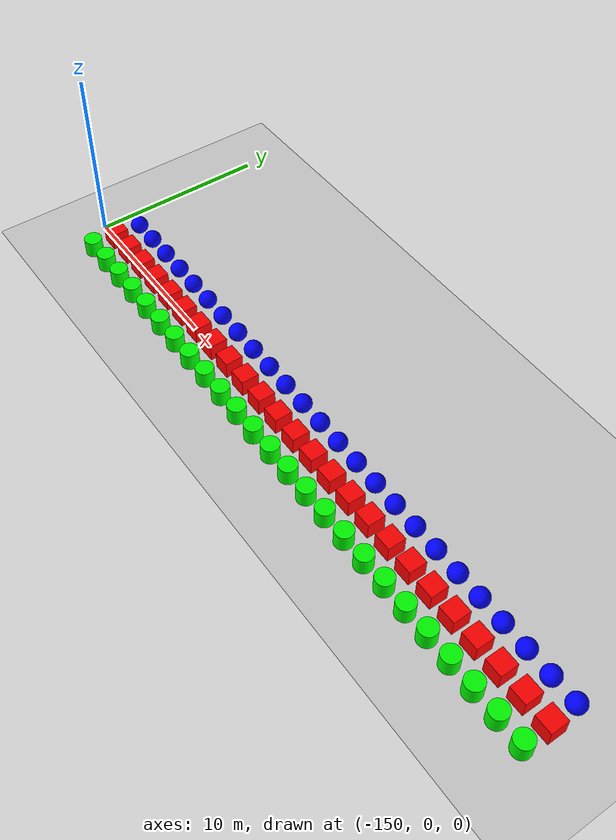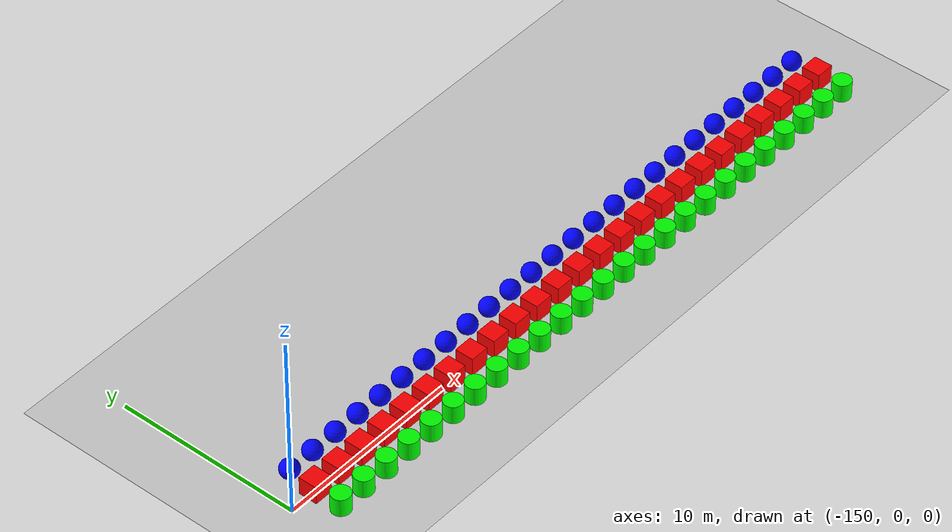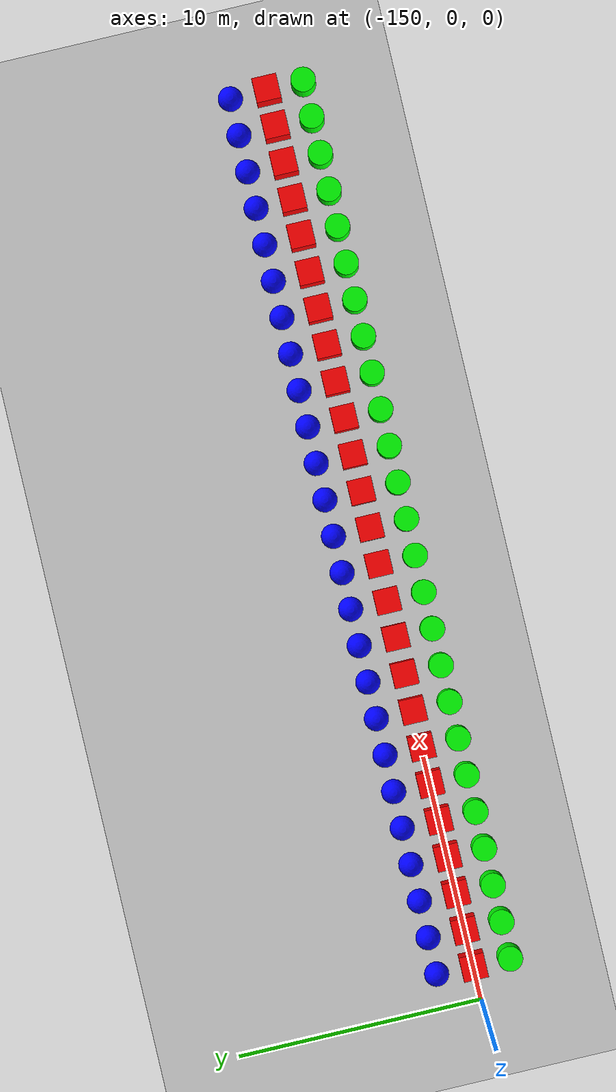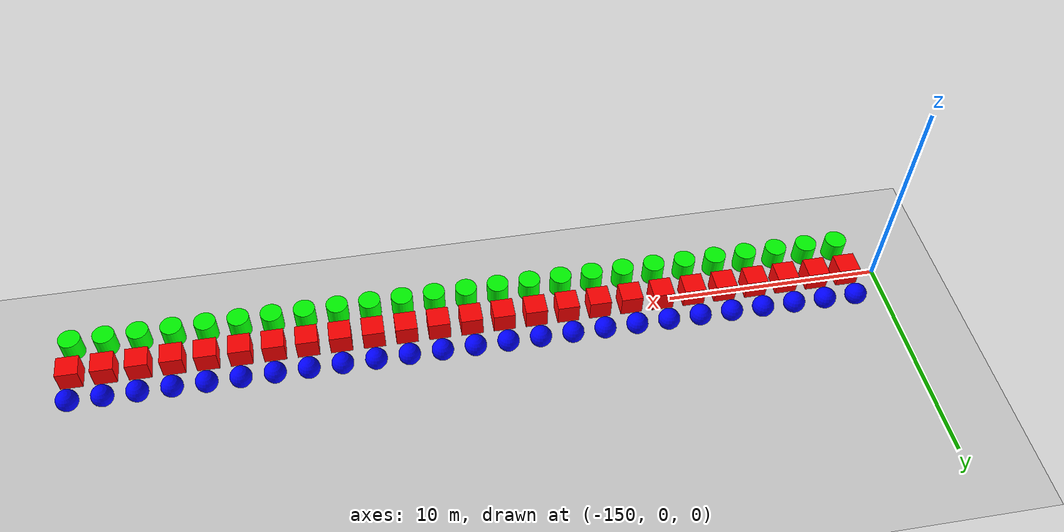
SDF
<sdf version="1.6">
 <world name="shapes">
  <model name="ground_plane">
   <static>true</static>
   <link name="link">
    <collision name="collision">
     <geometry><plane><normal>0 0 1</normal><size>100 100</size></plane></geometry>
    </collision>
    <visual name="visual">
     <geometry><plane><normal>0 0 1</normal><size>100 100</size></plane></geometry>
     <material>
      <ambient>0.8 0.8 0.8 1</ambient>
      <diffuse>0.8 0.8 0.8 1</diffuse>
      <specular>0.8 0.8 0.8 1</specular>
     </material>
    </visual>
   </link>
  </model>
  <model name="box_401">
   <static>false</static>
   <pose>-148.5 0 0.5 0 0 0</pose>
   <link name="box_link">
    <inertial>
     <inertia><ixx>1</ixx><ixy>0</ixy><ixz>0</ixz><iyy>1</iyy><iyz>0</iyz><izz>1</izz></inertia>
     <mass>1.0</mass>
    </inertial>
    <collision name="box_collision"><geometry><box><size>1 1 1</size></box></geometry></collision>
    <visual name="box_visual">
     <geometry><box><size>1 1 1</size></box></geometry>
     <material><ambient>1 0 0 1</ambient><diffuse>1 0 0 1</diffuse><specular>1 0 0 1</specular></material>
    </visual>
   </link>
  </model>
  <model name="cylinder_401">
   <static>false</static>
   <pose>-148.5 -1.5 0.5 0 0 0</pose>
   <link name="cylinder_link">
    <inertial>
     <inertia><ixx>2</ixx><ixy>0</ixy><ixz>0</ixz><iyy>2</iyy><iyz>0</iyz><izz>2</izz></inertia>
     <mass>2.0</mass>
    </inertial>
    <collision name="cylinder_collision">
     <geometry><cylinder><radius>0.5</radius><length>1.0</length></cylinder></geometry>
    </collision>
    <visual name="cylinder_visual">
     <geometry><cylinder><radius>0.5</radius><length>1.0</length></cylinder></geometry>
     <material><ambient>0 1 0 1</ambient><diffuse>0 1 0 1</diffuse><specular>0 1 0 1</specular></material>
    </visual>
   </link>
  </model>
  <model name="sphere_401">
   <static>false</static>
   <pose>-148.5 1.5 0.5 0 0 0</pose>
   <link name="sphere_link">
    <inertial>
     <inertia><ixx>3</ixx><ixy>0</ixy><ixz>0</ixz><iyy>3</iyy><iyz>0</iyz><izz>3</izz></inertia>
     <mass>3.0</mass>
    </inertial>
    <collision name="sphere_collision"><geometry><sphere><radius>0.5</radius></sphere></geometry></collision>
    <visual name="sphere_visual">
     <geometry><sphere><radius>0.5</radius></sphere></geometry>
     <material><ambient>0 0 1 1</ambient><diffuse>0 0 1 1</diffuse><specular>0 0 1 1</specular></material>
    </visual>
   </link>
  </model>
  <model name="box_402">
   <static>false</static>
   <pose>-147.0 0 0.5 0 0 0</pose>
   <link name="box_link">
    <inertial>
     <inertia><ixx>1</ixx><ixy>0</ixy><ixz>0</ixz><iyy>1</iyy><iyz>0</iyz><izz>1</izz></inertia>
     <mass>1.0</mass>
    </inertial>
    <collision name="box_collision"><geometry><box><size>1 1 1</size></box></geometry></collision>
    <visual name="box_visual">
     <geometry><box><size>1 1 1</size></box></geometry>
     <material><ambient>1 0 0 1</ambient><diffuse>1 0 0 1</diffuse><specular>1 0 0 1</specular></material>
    </visual>
   </link>
  </model>
  <model name="cylinder_402">
   <static>false</static>
   <pose>-147.0 -1.5 0.5 0 0 0</pose>
   <link name="cylinder_link">
    <inertial>
     <inertia><ixx>2</ixx><ixy>0</ixy><ixz>0</ixz><iyy>2</iyy><iyz>0</iyz><izz>2</izz></inertia>
     <mass>2.0</mass>
    </inertial>
    <collision name="cylinder_collision">
     <geometry><cylinder><radius>0.5</radius><length>1.0</length></cylinder></geometry>
    </collision>
    <visual name="cylinder_visual">
     <geometry><cylinder><radius>0.5</radius><length>1.0</length></cylinder></geometry>
     <material><ambient>0 1 0 1</ambient><diffuse>0 1 0 1</diffuse><specular>0 1 0 1</specular></material>
    </visual>
   </link>
  </model>
  <model name="sphere_402">
   <static>false</static>
   <pose>-147.0 1.5 0.5 0 0 0</pose>
   <link name="sphere_link">
    <inertial>
     <inertia><ixx>3</ixx><ixy>0</ixy><ixz>0</ixz><iyy>3</iyy><iyz>0</iyz><izz>3</izz></inertia>
     <mass>3.0</mass>
    </inertial>
    <collision name="sphere_collision"><geometry><sphere><radius>0.5</radius></sphere></geometry></collision>
    <visual name="sphere_visual">
     <geometry><sphere><radius>0.5</radius></sphere></geometry>
     <material><ambient>0 0 1 1</ambient><diffuse>0 0 1 1</diffuse><specular>0 0 1 1</specular></material>
    </visual>
   </link>
  </model>
  <model name="box_403">
   <static>false</static>
   <pose>-145.5 0 0.5 0 0 0</pose>
   <link name="box_link">
    <inertial>
     <inertia><ixx>1</ixx><ixy>0</ixy><ixz>0</ixz><iyy>1</iyy><iyz>0</iyz><izz>1</izz></inertia>
     <mass>1.0</mass>
    </inertial>
    <collision name="box_collision"><geometry><box><size>1 1 1</size></box></geometry></collision>
    <visual name="box_visual">
     <geometry><box><size>1 1 1</size></box></geometry>
     <material><ambient>1 0 0 1</ambient><diffuse>1 0 0 1</diffuse><specular>1 0 0 1</specular></material>
    </visual>
   </link>
  </model>
  <model name="cylinder_403">
   <static>false</static>
   <pose>-145.5 -1.5 0.5 0 0 0</pose>
   <link name="cylinder_link">
    <inertial>
     <inertia><ixx>2</ixx><ixy>0</ixy><ixz>0</ixz><iyy>2</iyy><iyz>0</iyz><izz>2</izz></inertia>
     <mass>2.0</mass>
    </inertial>
    <collision name="cylinder_collision">
     <geometry><cylinder><radius>0.5</radius><length>1.0</length></cylinder></geometry>
    </collision>
    <visual name="cylinder_visual">
     <geometry><cylinder><radius>0.5</radius><length>1.0</length></cylinder></geometry>
     <material><ambient>0 1 0 1</ambient><diffuse>0 1 0 1</diffuse><specular>0 1 0 1</specular></material>
    </visual>
   </link>
  </model>
  <model name="sphere_403">
   <static>false</static>
   <pose>-145.5 1.5 0.5 0 0 0</pose>
   <link name="sphere_link">
    <inertial>
     <inertia><ixx>3</ixx><ixy>0</ixy><ixz>0</ixz><iyy>3</iyy><iyz>0</iyz><izz>3</izz></inertia>
     <mass>3.0</mass>
    </inertial>
    <collision name="sphere_collision"><geometry><sphere><radius>0.5</radius></sphere></geometry></collision>
    <visual name="sphere_visual">
     <geometry><sphere><radius>0.5</radius></sphere></geometry>
     <material><ambient>0 0 1 1</ambient><diffuse>0 0 1 1</diffuse><specular>0 0 1 1</specular></material>
    </visual>
   </link>
  </model>
  <model name="box_404">
   <static>false</static>
   <pose>-144.0 0 0.5 0 0 0</pose>
   <link name="box_link">
    <inertial>
     <inertia><ixx>1</ixx><ixy>0</ixy><ixz>0</ixz><iyy>1</iyy><iyz>0</iyz><izz>1</izz></inertia>
     <mass>1.0</mass>
    </inertial>
    <collision name="box_collision"><geometry><box><size>1 1 1</size></box></geometry></collision>
    <visual name="box_visual">
     <geometry><box><size>1 1 1</size></box></geometry>
     <material><ambient>1 0 0 1</ambient><diffuse>1 0 0 1</diffuse><specular>1 0 0 1</specular></material>
    </visual>
   </link>
  </model>
  <model name="cylinder_404">
   <static>false</static>
   <pose>-144.0 -1.5 0.5 0 0 0</pose>
   <link name="cylinder_link">
    <inertial>
     <inertia><ixx>2</ixx><ixy>0</ixy><ixz>0</ixz><iyy>2</iyy><iyz>0</iyz><izz>2</izz></inertia>
     <mass>2.0</mass>
    </inertial>
    <collision name="cylinder_collision">
     <geometry><cylinder><radius>0.5</radius><length>1.0</length></cylinder></geometry>
    </collision>
    <visual name="cylinder_visual">
     <geometry><cylinder><radius>0.5</radius><length>1.0</length></cylinder></geometry>
     <material><ambient>0 1 0 1</ambient><diffuse>0 1 0 1</diffuse><specular>0 1 0 1</specular></material>
    </visual>
   </link>
  </model>
  <model name="sphere_404">
   <static>false</static>
   <pose>-144.0 1.5 0.5 0 0 0</pose>
   <link name="sphere_link">
    <inertial>
     <inertia><ixx>3</ixx><ixy>0</ixy><ixz>0</ixz><iyy>3</iyy><iyz>0</iyz><izz>3</izz></inertia>
     <mass>3.0</mass>
    </inertial>
    <collision name="sphere_collision"><geometry><sphere><radius>0.5</radius></sphere></geometry></collision>
    <visual name="sphere_visual">
     <geometry><sphere><radius>0.5</radius></sphere></geometry>
     <material><ambient>0 0 1 1</ambient><diffuse>0 0 1 1</diffuse><specular>0 0 1 1</specular></material>
    </visual>
   </link>
  </model>
  <model name="box_405">
   <static>false</static>
   <pose>-142.5 0 0.5 0 0 0</pose>
   <link name="box_link">
    <inertial>
     <inertia><ixx>1</ixx><ixy>0</ixy><ixz>0</ixz><iyy>1</iyy><iyz>0</iyz><izz>1</izz></inertia>
     <mass>1.0</mass>
    </inertial>
    <collision name="box_collision"><geometry><box><size>1 1 1</size></box></geometry></collision>
    <visual name="box_visual">
     <geometry><box><size>1 1 1</size></box></geometry>
     <material><ambient>1 0 0 1</ambient><diffuse>1 0 0 1</diffuse><specular>1 0 0 1</specular></material>
    </visual>
   </link>
  </model>
  <model name="cylinder_405">
   <static>false</static>
   <pose>-142.5 -1.5 0.5 0 0 0</pose>
   <link name="cylinder_link">
    <inertial>
     <inertia><ixx>2</ixx><ixy>0</ixy><ixz>0</ixz><iyy>2</iyy><iyz>0</iyz><izz>2</izz></inertia>
     <mass>2.0</mass>
    </inertial>
    <collision name="cylinder_collision">
     <geometry><cylinder><radius>0.5</radius><length>1.0</length></cylinder></geometry>
    </collision>
    <visual name="cylinder_visual">
     <geometry><cylinder><radius>0.5</radius><length>1.0</length></cylinder></geometry>
     <material><ambient>0 1 0 1</ambient><diffuse>0 1 0 1</diffuse><specular>0 1 0 1</specular></material>
    </visual>
   </link>
  </model>
  <model name="sphere_405">
   <static>false</static>
   <pose>-142.5 1.5 0.5 0 0 0</pose>
   <link name="sphere_link">
    <inertial>
     <inertia><ixx>3</ixx><ixy>0</ixy><ixz>0</ixz><iyy>3</iyy><iyz>0</iyz><izz>3</izz></inertia>
     <mass>3.0</mass>
    </inertial>
    <collision name="sphere_collision"><geometry><sphere><radius>0.5</radius></sphere></geometry></collision>
    <visual name="sphere_visual">
     <geometry><sphere><radius>0.5</radius></sphere></geometry>
     <material><ambient>0 0 1 1</ambient><diffuse>0 0 1 1</diffuse><specular>0 0 1 1</specular></material>
    </visual>
   </link>
  </model>
  <model name="box_406">
   <static>false</static>
   <pose>-141.0 0 0.5 0 0 0</pose>
   <link name="box_link">
    <inertial>
     <inertia><ixx>1</ixx><ixy>0</ixy><ixz>0</ixz><iyy>1</iyy><iyz>0</iyz><izz>1</izz></inertia>
     <mass>1.0</mass>
    </inertial>
    <collision name="box_collision"><geometry><box><size>1 1 1</size></box></geometry></collision>
    <visual name="box_visual">
     <geometry><box><size>1 1 1</size></box></geometry>
     <material><ambient>1 0 0 1</ambient><diffuse>1 0 0 1</diffuse><specular>1 0 0 1</specular></material>
    </visual>
   </link>
  </model>
  <model name="cylinder_406">
   <static>false</static>
   <pose>-141.0 -1.5 0.5 0 0 0</pose>
   <link name="cylinder_link">
    <inertial>
     <inertia><ixx>2</ixx><ixy>0</ixy><ixz>0</ixz><iyy>2</iyy><iyz>0</iyz><izz>2</izz></inertia>
     <mass>2.0</mass>
    </inertial>
    <collision name="cylinder_collision">
     <geometry><cylinder><radius>0.5</radius><length>1.0</length></cylinder></geometry>
    </collision>
    <visual name="cylinder_visual">
     <geometry><cylinder><radius>0.5</radius><length>1.0</length></cylinder></geometry>
     <material><ambient>0 1 0 1</ambient><diffuse>0 1 0 1</diffuse><specular>0 1 0 1</specular></material>
    </visual>
   </link>
  </model>
  <model name="sphere_406">
   <static>false</static>
   <pose>-141.0 1.5 0.5 0 0 0</pose>
   <link name="sphere_link">
    <inertial>
     <inertia><ixx>3</ixx><ixy>0</ixy><ixz>0</ixz><iyy>3</iyy><iyz>0</iyz><izz>3</izz></inertia>
     <mass>3.0</mass>
    </inertial>
    <collision name="sphere_collision"><geometry><sphere><radius>0.5</radius></sphere></geometry></collision>
    <visual name="sphere_visual">
     <geometry><sphere><radius>0.5</radius></sphere></geometry>
     <material><ambient>0 0 1 1</ambient><diffuse>0 0 1 1</diffuse><specular>0 0 1 1</specular></material>
    </visual>
   </link>
  </model>
  <model name="box_407">
   <static>false</static>
   <pose>-139.5 0 0.5 0 0 0</pose>
   <link name="box_link">
    <inertial>
     <inertia><ixx>1</ixx><ixy>0</ixy><ixz>0</ixz><iyy>1</iyy><iyz>0</iyz><izz>1</izz></inertia>
     <mass>1.0</mass>
    </inertial>
    <collision name="box_collision"><geometry><box><size>1 1 1</size></box></geometry></collision>
    <visual name="box_visual">
     <geometry><box><size>1 1 1</size></box></geometry>
     <material><ambient>1 0 0 1</ambient><diffuse>1 0 0 1</diffuse><specular>1 0 0 1</specular></material>
    </visual>
   </link>
  </model>
  <model name="cylinder_407">
   <static>false</static>
   <pose>-139.5 -1.5 0.5 0 0 0</pose>
   <link name="cylinder_link">
    <inertial>
     <inertia><ixx>2</ixx><ixy>0</ixy><ixz>0</ixz><iyy>2</iyy><iyz>0</iyz><izz>2</izz></inertia>
     <mass>2.0</mass>
    </inertial>
    <collision name="cylinder_collision">
     <geometry><cylinder><radius>0.5</radius><length>1.0</length></cylinder></geometry>
    </collision>
    <visual name="cylinder_visual">
     <geometry><cylinder><radius>0.5</radius><length>1.0</length></cylinder></geometry>
     <material><ambient>0 1 0 1</ambient><diffuse>0 1 0 1</diffuse><specular>0 1 0 1</specular></material>
    </visual>
   </link>
  </model>
  <model name="sphere_407">
   <static>false</static>
   <pose>-139.5 1.5 0.5 0 0 0</pose>
   <link name="sphere_link">
    <inertial>
     <inertia><ixx>3</ixx><ixy>0</ixy><ixz>0</ixz><iyy>3</iyy><iyz>0</iyz><izz>3</izz></inertia>
     <mass>3.0</mass>
    </inertial>
    <collision name="sphere_collision"><geometry><sphere><radius>0.5</radius></sphere></geometry></collision>
    <visual name="sphere_visual">
     <geometry><sphere><radius>0.5</radius></sphere></geometry>
     <material><ambient>0 0 1 1</ambient><diffuse>0 0 1 1</diffuse><specular>0 0 1 1</specular></material>
    </visual>
   </link>
  </model>
  <model name="box_408">
   <static>false</static>
   <pose>-138.0 0 0.5 0 0 0</pose>
   <link name="box_link">
    <inertial>
     <inertia><ixx>1</ixx><ixy>0</ixy><ixz>0</ixz><iyy>1</iyy><iyz>0</iyz><izz>1</izz></inertia>
     <mass>1.0</mass>
    </inertial>
    <collision name="box_collision"><geometry><box><size>1 1 1</size></box></geometry></collision>
    <visual name="box_visual">
     <geometry><box><size>1 1 1</size></box></geometry>
     <material><ambient>1 0 0 1</ambient><diffuse>1 0 0 1</diffuse><specular>1 0 0 1</specular></material>
    </visual>
   </link>
  </model>
  <model name="cylinder_408">
   <static>false</static>
   <pose>-138.0 -1.5 0.5 0 0 0</pose>
   <link name="cylinder_link">
    <inertial>
     <inertia><ixx>2</ixx><ixy>0</ixy><ixz>0</ixz><iyy>2</iyy><iyz>0</iyz><izz>2</izz></inertia>
     <mass>2.0</mass>
    </inertial>
    <collision name="cylinder_collision">
     <geometry><cylinder><radius>0.5</radius><length>1.0</length></cylinder></geometry>
    </collision>
    <visual name="cylinder_visual">
     <geometry><cylinder><radius>0.5</radius><length>1.0</length></cylinder></geometry>
     <material><ambient>0 1 0 1</ambient><diffuse>0 1 0 1</diffuse><specular>0 1 0 1</specular></material>
    </visual>
   </link>
  </model>
  <model name="sphere_408">
   <static>false</static>
   <pose>-138.0 1.5 0.5 0 0 0</pose>
   <link name="sphere_link">
    <inertial>
     <inertia><ixx>3</ixx><ixy>0</ixy><ixz>0</ixz><iyy>3</iyy><iyz>0</iyz><izz>3</izz></inertia>
     <mass>3.0</mass>
    </inertial>
    <collision name="sphere_collision"><geometry><sphere><radius>0.5</radius></sphere></geometry></collision>
    <visual name="sphere_visual">
     <geometry><sphere><radius>0.5</radius></sphere></geometry>
     <material><ambient>0 0 1 1</ambient><diffuse>0 0 1 1</diffuse><specular>0 0 1 1</specular></material>
    </visual>
   </link>
  </model>
  <model name="box_409">
   <static>false</static>
   <pose>-136.5 0 0.5 0 0 0</pose>
   <link name="box_link">
    <inertial>
     <inertia><ixx>1</ixx><ixy>0</ixy><ixz>0</ixz><iyy>1</iyy><iyz>0</iyz><izz>1</izz></inertia>
     <mass>1.0</mass>
    </inertial>
    <collision name="box_collision"><geometry><box><size>1 1 1</size></box></geometry></collision>
    <visual name="box_visual">
     <geometry><box><size>1 1 1</size></box></geometry>
     <material><ambient>1 0 0 1</ambient><diffuse>1 0 0 1</diffuse><specular>1 0 0 1</specular></material>
    </visual>
   </link>
  </model>
  <model name="cylinder_409">
   <static>false</static>
   <pose>-136.5 -1.5 0.5 0 0 0</pose>
   <link name="cylinder_link">
    <inertial>
     <inertia><ixx>2</ixx><ixy>0</ixy><ixz>0</ixz><iyy>2</iyy><iyz>0</iyz><izz>2</izz></inertia>
     <mass>2.0</mass>
    </inertial>
    <collision name="cylinder_collision">
     <geometry><cylinder><radius>0.5</radius><length>1.0</length></cylinder></geometry>
    </collision>
    <visual name="cylinder_visual">
     <geometry><cylinder><radius>0.5</radius><length>1.0</length></cylinder></geometry>
     <material><ambient>0 1 0 1</ambient><diffuse>0 1 0 1</diffuse><specular>0 1 0 1</specular></material>
    </visual>
   </link>
  </model>
  <model name="sphere_409">
   <static>false</static>
   <pose>-136.5 1.5 0.5 0 0 0</pose>
   <link name="sphere_link">
    <inertial>
     <inertia><ixx>3</ixx><ixy>0</ixy><ixz>0</ixz><iyy>3</iyy><iyz>0</iyz><izz>3</izz></inertia>
     <mass>3.0</mass>
    </inertial>
    <collision name="sphere_collision"><geometry><sphere><radius>0.5</radius></sphere></geometry></collision>
    <visual name="sphere_visual">
     <geometry><sphere><radius>0.5</radius></sphere></geometry>
     <material><ambient>0 0 1 1</ambient><diffuse>0 0 1 1</diffuse><specular>0 0 1 1</specular></material>
    </visual>
   </link>
  </model>
  <model name="box_410">
   <static>false</static>
   <pose>-135.0 0 0.5 0 0 0</pose>
   <link name="box_link">
    <inertial>
     <inertia><ixx>1</ixx><ixy>0</ixy><ixz>0</ixz><iyy>1</iyy><iyz>0</iyz><izz>1</izz></inertia>
     <mass>1.0</mass>
    </inertial>
    <collision name="box_collision"><geometry><box><size>1 1 1</size></box></geometry></collision>
    <visual name="box_visual">
     <geometry><box><size>1 1 1</size></box></geometry>
     <material><ambient>1 0 0 1</ambient><diffuse>1 0 0 1</diffuse><specular>1 0 0 1</specular></material>
    </visual>
   </link>
  </model>
  <model name="cylinder_410">
   <static>false</static>
   <pose>-135.0 -1.5 0.5 0 0 0</pose>
   <link name="cylinder_link">
    <inertial>
     <inertia><ixx>2</ixx><ixy>0</ixy><ixz>0</ixz><iyy>2</iyy><iyz>0</iyz><izz>2</izz></inertia>
     <mass>2.0</mass>
    </inertial>
    <collision name="cylinder_collision">
     <geometry><cylinder><radius>0.5</radius><length>1.0</length></cylinder></geometry>
    </collision>
    <visual name="cylinder_visual">
     <geometry><cylinder><radius>0.5</radius><length>1.0</length></cylinder></geometry>
     <material><ambient>0 1 0 1</ambient><diffuse>0 1 0 1</diffuse><specular>0 1 0 1</specular></material>
    </visual>
   </link>
  </model>
  <model name="sphere_410">
   <static>false</static>
   <pose>-135.0 1.5 0.5 0 0 0</pose>
   <link name="sphere_link">
    <inertial>
     <inertia><ixx>3</ixx><ixy>0</ixy><ixz>0</ixz><iyy>3</iyy><iyz>0</iyz><izz>3</izz></inertia>
     <mass>3.0</mass>
    </inertial>
    <collision name="sphere_collision"><geometry><sphere><radius>0.5</radius></sphere></geometry></collision>
    <visual name="sphere_visual">
     <geometry><sphere><radius>0.5</radius></sphere></geometry>
     <material><ambient>0 0 1 1</ambient><diffuse>0 0 1 1</diffuse><specular>0 0 1 1</specular></material>
    </visual>
   </link>
  </model>
  <model name="box_411">
   <static>false</static>
   <pose>-133.5 0 0.5 0 0 0</pose>
   <link name="box_link">
    <inertial>
     <inertia><ixx>1</ixx><ixy>0</ixy><ixz>0</ixz><iyy>1</iyy><iyz>0</iyz><izz>1</izz></inertia>
     <mass>1.0</mass>
    </inertial>
    <collision name="box_collision"><geometry><box><size>1 1 1</size></box></geometry></collision>
    <visual name="box_visual">
     <geometry><box><size>1 1 1</size></box></geometry>
     <material><ambient>1 0 0 1</ambient><diffuse>1 0 0 1</diffuse><specular>1 0 0 1</specular></material>
    </visual>
   </link>
  </model>
  <model name="cylinder_411">
   <static>false</static>
   <pose>-133.5 -1.5 0.5 0 0 0</pose>
   <link name="cylinder_link">
    <inertial>
     <inertia><ixx>2</ixx><ixy>0</ixy><ixz>0</ixz><iyy>2</iyy><iyz>0</iyz><izz>2</izz></inertia>
     <mass>2.0</mass>
    </inertial>
    <collision name="cylinder_collision">
     <geometry><cylinder><radius>0.5</radius><length>1.0</length></cylinder></geometry>
    </collision>
    <visual name="cylinder_visual">
     <geometry><cylinder><radius>0.5</radius><length>1.0</length></cylinder></geometry>
     <material><ambient>0 1 0 1</ambient><diffuse>0 1 0 1</diffuse><specular>0 1 0 1</specular></material>
    </visual>
   </link>
  </model>
  <model name="sphere_411">
   <static>false</static>
   <pose>-133.5 1.5 0.5 0 0 0</pose>
   <link name="sphere_link">
    <inertial>
     <inertia><ixx>3</ixx><ixy>0</ixy><ixz>0</ixz><iyy>3</iyy><iyz>0</iyz><izz>3</izz></inertia>
     <mass>3.0</mass>
    </inertial>
    <collision name="sphere_collision"><geometry><sphere><radius>0.5</radius></sphere></geometry></collision>
    <visual name="sphere_visual">
     <geometry><sphere><radius>0.5</radius></sphere></geometry>
     <material><ambient>0 0 1 1</ambient><diffuse>0 0 1 1</diffuse><specular>0 0 1 1</specular></material>
    </visual>
   </link>
  </model>
  <model name="box_412">
   <static>false</static>
   <pose>-132.0 0 0.5 0 0 0</pose>
   <link name="box_link">
    <inertial>
     <inertia><ixx>1</ixx><ixy>0</ixy><ixz>0</ixz><iyy>1</iyy><iyz>0</iyz><izz>1</izz></inertia>
     <mass>1.0</mass>
    </inertial>
    <collision name="box_collision"><geometry><box><size>1 1 1</size></box></geometry></collision>
    <visual name="box_visual">
     <geometry><box><size>1 1 1</size></box></geometry>
     <material><ambient>1 0 0 1</ambient><diffuse>1 0 0 1</diffuse><specular>1 0 0 1</specular></material>
    </visual>
   </link>
  </model>
  <model name="cylinder_412">
   <static>false</static>
   <pose>-132.0 -1.5 0.5 0 0 0</pose>
   <link name="cylinder_link">
    <inertial>
     <inertia><ixx>2</ixx><ixy>0</ixy><ixz>0</ixz><iyy>2</iyy><iyz>0</iyz><izz>2</izz></inertia>
     <mass>2.0</mass>
    </inertial>
    <collision name="cylinder_collision">
     <geometry><cylinder><radius>0.5</radius><length>1.0</length></cylinder></geometry>
    </collision>
    <visual name="cylinder_visual">
     <geometry><cylinder><radius>0.5</radius><length>1.0</length></cylinder></geometry>
     <material><ambient>0 1 0 1</ambient><diffuse>0 1 0 1</diffuse><specular>0 1 0 1</specular></material>
    </visual>
   </link>
  </model>
  <model name="sphere_412">
   <static>false</static>
   <pose>-132.0 1.5 0.5 0 0 0</pose>
   <link name="sphere_link">
    <inertial>
     <inertia><ixx>3</ixx><ixy>0</ixy><ixz>0</ixz><iyy>3</iyy><iyz>0</iyz><izz>3</izz></inertia>
     <mass>3.0</mass>
    </inertial>
    <collision name="sphere_collision"><geometry><sphere><radius>0.5</radius></sphere></geometry></collision>
    <visual name="sphere_visual">
     <geometry><sphere><radius>0.5</radius></sphere></geometry>
     <material><ambient>0 0 1 1</ambient><diffuse>0 0 1 1</diffuse><specular>0 0 1 1</specular></material>
    </visual>
   </link>
  </model>
  <model name="box_413">
   <static>false</static>
   <pose>-130.5 0 0.5 0 0 0</pose>
   <link name="box_link">
    <inertial>
     <inertia><ixx>1</ixx><ixy>0</ixy><ixz>0</ixz><iyy>1</iyy><iyz>0</iyz><izz>1</izz></inertia>
     <mass>1.0</mass>
    </inertial>
    <collision name="box_collision"><geometry><box><size>1 1 1</size></box></geometry></collision>
    <visual name="box_visual">
     <geometry><box><size>1 1 1</size></box></geometry>
     <material><ambient>1 0 0 1</ambient><diffuse>1 0 0 1</diffuse><specular>1 0 0 1</specular></material>
    </visual>
   </link>
  </model>
  <model name="cylinder_413">
   <static>false</static>
   <pose>-130.5 -1.5 0.5 0 0 0</pose>
   <link name="cylinder_link">
    <inertial>
     <inertia><ixx>2</ixx><ixy>0</ixy><ixz>0</ixz><iyy>2</iyy><iyz>0</iyz><izz>2</izz></inertia>
     <mass>2.0</mass>
    </inertial>
    <collision name="cylinder_collision">
     <geometry><cylinder><radius>0.5</radius><length>1.0</length></cylinder></geometry>
    </collision>
    <visual name="cylinder_visual">
     <geometry><cylinder><radius>0.5</radius><length>1.0</length></cylinder></geometry>
     <material><ambient>0 1 0 1</ambient><diffuse>0 1 0 1</diffuse><specular>0 1 0 1</specular></material>
    </visual>
   </link>
  </model>
  <model name="sphere_413">
   <static>false</static>
   <pose>-130.5 1.5 0.5 0 0 0</pose>
   <link name="sphere_link">
    <inertial>
     <inertia><ixx>3</ixx><ixy>0</ixy><ixz>0</ixz><iyy>3</iyy><iyz>0</iyz><izz>3</izz></inertia>
     <mass>3.0</mass>
    </inertial>
    <collision name="sphere_collision"><geometry><sphere><radius>0.5</radius></sphere></geometry></collision>
    <visual name="sphere_visual">
     <geometry><sphere><radius>0.5</radius></sphere></geometry>
     <material><ambient>0 0 1 1</ambient><diffuse>0 0 1 1</diffuse><specular>0 0 1 1</specular></material>
    </visual>
   </link>
  </model>
  <model name="box_414">
   <static>false</static>
   <pose>-129.0 0 0.5 0 0 0</pose>
   <link name="box_link">
    <inertial>
     <inertia><ixx>1</ixx><ixy>0</ixy><ixz>0</ixz><iyy>1</iyy><iyz>0</iyz><izz>1</izz></inertia>
     <mass>1.0</mass>
    </inertial>
    <collision name="box_collision"><geometry><box><size>1 1 1</size></box></geometry></collision>
    <visual name="box_visual">
     <geometry><box><size>1 1 1</size></box></geometry>
     <material><ambient>1 0 0 1</ambient><diffuse>1 0 0 1</diffuse><specular>1 0 0 1</specular></material>
    </visual>
   </link>
  </model>
  <model name="cylinder_414">
   <static>false</static>
   <pose>-129.0 -1.5 0.5 0 0 0</pose>
   <link name="cylinder_link">
    <inertial>
     <inertia><ixx>2</ixx><ixy>0</ixy><ixz>0</ixz><iyy>2</iyy><iyz>0</iyz><izz>2</izz></inertia>
     <mass>2.0</mass>
    </inertial>
    <collision name="cylinder_collision">
     <geometry><cylinder><radius>0.5</radius><length>1.0</length></cylinder></geometry>
    </collision>
    <visual name="cylinder_visual">
     <geometry><cylinder><radius>0.5</radius><length>1.0</length></cylinder></geometry>
     <material><ambient>0 1 0 1</ambient><diffuse>0 1 0 1</diffuse><specular>0 1 0 1</specular></material>
    </visual>
   </link>
  </model>
  <model name="sphere_414">
   <static>false</static>
   <pose>-129.0 1.5 0.5 0 0 0</pose>
   <link name="sphere_link">
    <inertial>
     <inertia><ixx>3</ixx><ixy>0</ixy><ixz>0</ixz><iyy>3</iyy><iyz>0</iyz><izz>3</izz></inertia>
     <mass>3.0</mass>
    </inertial>
    <collision name="sphere_collision"><geometry><sphere><radius>0.5</radius></sphere></geometry></collision>
    <visual name="sphere_visual">
     <geometry><sphere><radius>0.5</radius></sphere></geometry>
     <material><ambient>0 0 1 1</ambient><diffuse>0 0 1 1</diffuse><specular>0 0 1 1</specular></material>
    </visual>
   </link>
  </model>
  <model name="box_415">
   <static>false</static>
   <pose>-127.5 0 0.5 0 0 0</pose>
   <link name="box_link">
    <inertial>
     <inertia><ixx>1</ixx><ixy>0</ixy><ixz>0</ixz><iyy>1</iyy><iyz>0</iyz><izz>1</izz></inertia>
     <mass>1.0</mass>
    </inertial>
    <collision name="box_collision"><geometry><box><size>1 1 1</size></box></geometry></collision>
    <visual name="box_visual">
     <geometry><box><size>1 1 1</size></box></geometry>
     <material><ambient>1 0 0 1</ambient><diffuse>1 0 0 1</diffuse><specular>1 0 0 1</specular></material>
    </visual>
   </link>
  </model>
  <model name="cylinder_415">
   <static>false</static>
   <pose>-127.5 -1.5 0.5 0 0 0</pose>
   <link name="cylinder_link">
    <inertial>
     <inertia><ixx>2</ixx><ixy>0</ixy><ixz>0</ixz><iyy>2</iyy><iyz>0</iyz><izz>2</izz></inertia>
     <mass>2.0</mass>
    </inertial>
    <collision name="cylinder_collision">
     <geometry><cylinder><radius>0.5</radius><length>1.0</length></cylinder></geometry>
    </collision>
    <visual name="cylinder_visual">
     <geometry><cylinder><radius>0.5</radius><length>1.0</length></cylinder></geometry>
     <material><ambient>0 1 0 1</ambient><diffuse>0 1 0 1</diffuse><specular>0 1 0 1</specular></material>
    </visual>
   </link>
  </model>
  <model name="sphere_415">
   <static>false</static>
   <pose>-127.5 1.5 0.5 0 0 0</pose>
   <link name="sphere_link">
    <inertial>
     <inertia><ixx>3</ixx><ixy>0</ixy><ixz>0</ixz><iyy>3</iyy><iyz>0</iyz><izz>3</izz></inertia>
     <mass>3.0</mass>
    </inertial>
    <collision name="sphere_collision"><geometry><sphere><radius>0.5</radius></sphere></geometry></collision>
    <visual name="sphere_visual">
     <geometry><sphere><radius>0.5</radius></sphere></geometry>
     <material><ambient>0 0 1 1</ambient><diffuse>0 0 1 1</diffuse><specular>0 0 1 1</specular></material>
    </visual>
   </link>
  </model>
  <model name="box_416">
   <static>false</static>
   <pose>-126.0 0 0.5 0 0 0</pose>
   <link name="box_link">
    <inertial>
     <inertia><ixx>1</ixx><ixy>0</ixy><ixz>0</ixz><iyy>1</iyy><iyz>0</iyz><izz>1</izz></inertia>
     <mass>1.0</mass>
    </inertial>
    <collision name="box_collision"><geometry><box><size>1 1 1</size></box></geometry></collision>
    <visual name="box_visual">
     <geometry><box><size>1 1 1</size></box></geometry>
     <material><ambient>1 0 0 1</ambient><diffuse>1 0 0 1</diffuse><specular>1 0 0 1</specular></material>
    </visual>
   </link>
  </model>
  <model name="cylinder_416">
   <static>false</static>
   <pose>-126.0 -1.5 0.5 0 0 0</pose>
   <link name="cylinder_link">
    <inertial>
     <inertia><ixx>2</ixx><ixy>0</ixy><ixz>0</ixz><iyy>2</iyy><iyz>0</iyz><izz>2</izz></inertia>
     <mass>2.0</mass>
    </inertial>
    <collision name="cylinder_collision">
     <geometry><cylinder><radius>0.5</radius><length>1.0</length></cylinder></geometry>
    </collision>
    <visual name="cylinder_visual">
     <geometry><cylinder><radius>0.5</radius><length>1.0</length></cylinder></geometry>
     <material><ambient>0 1 0 1</ambient><diffuse>0 1 0 1</diffuse><specular>0 1 0 1</specular></material>
    </visual>
   </link>
  </model>
  <model name="sphere_416">
   <static>false</static>
   <pose>-126.0 1.5 0.5 0 0 0</pose>
   <link name="sphere_link">
    <inertial>
     <inertia><ixx>3</ixx><ixy>0</ixy><ixz>0</ixz><iyy>3</iyy><iyz>0</iyz><izz>3</izz></inertia>
     <mass>3.0</mass>
    </inertial>
    <collision name="sphere_collision"><geometry><sphere><radius>0.5</radius></sphere></geometry></collision>
    <visual name="sphere_visual">
     <geometry><sphere><radius>0.5</radius></sphere></geometry>
     <material><ambient>0 0 1 1</ambient><diffuse>0 0 1 1</diffuse><specular>0 0 1 1</specular></material>
    </visual>
   </link>
  </model>
  <model name="box_417">
   <static>false</static>
   <pose>-124.5 0 0.5 0 0 0</pose>
   <link name="box_link">
    <inertial>
     <inertia><ixx>1</ixx><ixy>0</ixy><ixz>0</ixz><iyy>1</iyy><iyz>0</iyz><izz>1</izz></inertia>
     <mass>1.0</mass>
    </inertial>
    <collision name="box_collision"><geometry><box><size>1 1 1</size></box></geometry></collision>
    <visual name="box_visual">
     <geometry><box><size>1 1 1</size></box></geometry>
     <material><ambient>1 0 0 1</ambient><diffuse>1 0 0 1</diffuse><specular>1 0 0 1</specular></material>
    </visual>
   </link>
  </model>
  <model name="cylinder_417">
   <static>false</static>
   <pose>-124.5 -1.5 0.5 0 0 0</pose>
   <link name="cylinder_link">
    <inertial>
     <inertia><ixx>2</ixx><ixy>0</ixy><ixz>0</ixz><iyy>2</iyy><iyz>0</iyz><izz>2</izz></inertia>
     <mass>2.0</mass>
    </inertial>
    <collision name="cylinder_collision">
     <geometry><cylinder><radius>0.5</radius><length>1.0</length></cylinder></geometry>
    </collision>
    <visual name="cylinder_visual">
     <geometry><cylinder><radius>0.5</radius><length>1.0</length></cylinder></geometry>
     <material><ambient>0 1 0 1</ambient><diffuse>0 1 0 1</diffuse><specular>0 1 0 1</specular></material>
    </visual>
   </link>
  </model>
  <model name="sphere_417">
   <static>false</static>
   <pose>-124.5 1.5 0.5 0 0 0</pose>
   <link name="sphere_link">
    <inertial>
     <inertia><ixx>3</ixx><ixy>0</ixy><ixz>0</ixz><iyy>3</iyy><iyz>0</iyz><izz>3</izz></inertia>
     <mass>3.0</mass>
    </inertial>
    <collision name="sphere_collision"><geometry><sphere><radius>0.5</radius></sphere></geometry></collision>
    <visual name="sphere_visual">
     <geometry><sphere><radius>0.5</radius></sphere></geometry>
     <material><ambient>0 0 1 1</ambient><diffuse>0 0 1 1</diffuse><specular>0 0 1 1</specular></material>
    </visual>
   </link>
  </model>
  <model name="box_418">
   <static>false</static>
   <pose>-123.0 0 0.5 0 0 0</pose>
   <link name="box_link">
    <inertial>
     <inertia><ixx>1</ixx><ixy>0</ixy><ixz>0</ixz><iyy>1</iyy><iyz>0</iyz><izz>1</izz></inertia>
     <mass>1.0</mass>
    </inertial>
    <collision name="box_collision"><geometry><box><size>1 1 1</size></box></geometry></collision>
    <visual name="box_visual">
     <geometry><box><size>1 1 1</size></box></geometry>
     <material><ambient>1 0 0 1</ambient><diffuse>1 0 0 1</diffuse><specular>1 0 0 1</specular></material>
    </visual>
   </link>
  </model>
  <model name="cylinder_418">
   <static>false</static>
   <pose>-123.0 -1.5 0.5 0 0 0</pose>
   <link name="cylinder_link">
    <inertial>
     <inertia><ixx>2</ixx><ixy>0</ixy><ixz>0</ixz><iyy>2</iyy><iyz>0</iyz><izz>2</izz></inertia>
     <mass>2.0</mass>
    </inertial>
    <collision name="cylinder_collision">
     <geometry><cylinder><radius>0.5</radius><length>1.0</length></cylinder></geometry>
    </collision>
    <visual name="cylinder_visual">
     <geometry><cylinder><radius>0.5</radius><length>1.0</length></cylinder></geometry>
     <material><ambient>0 1 0 1</ambient><diffuse>0 1 0 1</diffuse><specular>0 1 0 1</specular></material>
    </visual>
   </link>
  </model>
  <model name="sphere_418">
   <static>false</static>
   <pose>-123.0 1.5 0.5 0 0 0</pose>
   <link name="sphere_link">
    <inertial>
     <inertia><ixx>3</ixx><ixy>0</ixy><ixz>0</ixz><iyy>3</iyy><iyz>0</iyz><izz>3</izz></inertia>
     <mass>3.0</mass>
    </inertial>
    <collision name="sphere_collision"><geometry><sphere><radius>0.5</radius></sphere></geometry></collision>
    <visual name="sphere_visual">
     <geometry><sphere><radius>0.5</radius></sphere></geometry>
     <material><ambient>0 0 1 1</ambient><diffuse>0 0 1 1</diffuse><specular>0 0 1 1</specular></material>
    </visual>
   </link>
  </model>
  <model name="box_419">
   <static>false</static>
   <pose>-121.5 0 0.5 0 0 0</pose>
   <link name="box_link">
    <inertial>
     <inertia><ixx>1</ixx><ixy>0</ixy><ixz>0</ixz><iyy>1</iyy><iyz>0</iyz><izz>1</izz></inertia>
     <mass>1.0</mass>
    </inertial>
    <collision name="box_collision"><geometry><box><size>1 1 1</size></box></geometry></collision>
    <visual name="box_visual">
     <geometry><box><size>1 1 1</size></box></geometry>
     <material><ambient>1 0 0 1</ambient><diffuse>1 0 0 1</diffuse><specular>1 0 0 1</specular></material>
    </visual>
   </link>
  </model>
  <model name="cylinder_419">
   <static>false</static>
   <pose>-121.5 -1.5 0.5 0 0 0</pose>
   <link name="cylinder_link">
    <inertial>
     <inertia><ixx>2</ixx><ixy>0</ixy><ixz>0</ixz><iyy>2</iyy><iyz>0</iyz><izz>2</izz></inertia>
     <mass>2.0</mass>
    </inertial>
    <collision name="cylinder_collision">
     <geometry><cylinder><radius>0.5</radius><length>1.0</length></cylinder></geometry>
    </collision>
    <visual name="cylinder_visual">
     <geometry><cylinder><radius>0.5</radius><length>1.0</length></cylinder></geometry>
     <material><ambient>0 1 0 1</ambient><diffuse>0 1 0 1</diffuse><specular>0 1 0 1</specular></material>
    </visual>
   </link>
  </model>
  <model name="sphere_419">
   <static>false</static>
   <pose>-121.5 1.5 0.5 0 0 0</pose>
   <link name="sphere_link">
    <inertial>
     <inertia><ixx>3</ixx><ixy>0</ixy><ixz>0</ixz><iyy>3</iyy><iyz>0</iyz><izz>3</izz></inertia>
     <mass>3.0</mass>
    </inertial>
    <collision name="sphere_collision"><geometry><sphere><radius>0.5</radius></sphere></geometry></collision>
    <visual name="sphere_visual">
     <geometry><sphere><radius>0.5</radius></sphere></geometry>
     <material><ambient>0 0 1 1</ambient><diffuse>0 0 1 1</diffuse><specular>0 0 1 1</specular></material>
    </visual>
   </link>
  </model>
  <model name="box_420">
   <static>false</static>
   <pose>-120.0 0 0.5 0 0 0</pose>
   <link name="box_link">
    <inertial>
     <inertia><ixx>1</ixx><ixy>0</ixy><ixz>0</ixz><iyy>1</iyy><iyz>0</iyz><izz>1</izz></inertia>
     <mass>1.0</mass>
    </inertial>
    <collision name="box_collision"><geometry><box><size>1 1 1</size></box></geometry></collision>
    <visual name="box_visual">
     <geometry><box><size>1 1 1</size></box></geometry>
     <material><ambient>1 0 0 1</ambient><diffuse>1 0 0 1</diffuse><specular>1 0 0 1</specular></material>
    </visual>
   </link>
  </model>
  <model name="cylinder_420">
   <static>false</static>
   <pose>-120.0 -1.5 0.5 0 0 0</pose>
   <link name="cylinder_link">
    <inertial>
     <inertia><ixx>2</ixx><ixy>0</ixy><ixz>0</ixz><iyy>2</iyy><iyz>0</iyz><izz>2</izz></inertia>
     <mass>2.0</mass>
    </inertial>
    <collision name="cylinder_collision">
     <geometry><cylinder><radius>0.5</radius><length>1.0</length></cylinder></geometry>
    </collision>
    <visual name="cylinder_visual">
     <geometry><cylinder><radius>0.5</radius><length>1.0</length></cylinder></geometry>
     <material><ambient>0 1 0 1</ambient><diffuse>0 1 0 1</diffuse><specular>0 1 0 1</specular></material>
    </visual>
   </link>
  </model>
  <model name="sphere_420">
   <static>false</static>
   <pose>-120.0 1.5 0.5 0 0 0</pose>
   <link name="sphere_link">
    <inertial>
     <inertia><ixx>3</ixx><ixy>0</ixy><ixz>0</ixz><iyy>3</iyy><iyz>0</iyz><izz>3</izz></inertia>
     <mass>3.0</mass>
    </inertial>
    <collision name="sphere_collision"><geometry><sphere><radius>0.5</radius></sphere></geometry></collision>
    <visual name="sphere_visual">
     <geometry><sphere><radius>0.5</radius></sphere></geometry>
     <material><ambient>0 0 1 1</ambient><diffuse>0 0 1 1</diffuse><specular>0 0 1 1</specular></material>
    </visual>
   </link>
  </model>
  <model name="box_421">
   <static>false</static>
   <pose>-118.5 0 0.5 0 0 0</pose>
   <link name="box_link">
    <inertial>
     <inertia><ixx>1</ixx><ixy>0</ixy><ixz>0</ixz><iyy>1</iyy><iyz>0</iyz><izz>1</izz></inertia>
     <mass>1.0</mass>
    </inertial>
    <collision name="box_collision"><geometry><box><size>1 1 1</size></box></geometry></collision>
    <visual name="box_visual">
     <geometry><box><size>1 1 1</size></box></geometry>
     <material><ambient>1 0 0 1</ambient><diffuse>1 0 0 1</diffuse><specular>1 0 0 1</specular></material>
    </visual>
   </link>
  </model>
  <model name="cylinder_421">
   <static>false</static>
   <pose>-118.5 -1.5 0.5 0 0 0</pose>
   <link name="cylinder_link">
    <inertial>
     <inertia><ixx>2</ixx><ixy>0</ixy><ixz>0</ixz><iyy>2</iyy><iyz>0</iyz><izz>2</izz></inertia>
     <mass>2.0</mass>
    </inertial>
    <collision name="cylinder_collision">
     <geometry><cylinder><radius>0.5</radius><length>1.0</length></cylinder></geometry>
    </collision>
    <visual name="cylinder_visual">
     <geometry><cylinder><radius>0.5</radius><length>1.0</length></cylinder></geometry>
     <material><ambient>0 1 0 1</ambient><diffuse>0 1 0 1</diffuse><specular>0 1 0 1</specular></material>
    </visual>
   </link>
  </model>
  <model name="sphere_421">
   <static>false</static>
   <pose>-118.5 1.5 0.5 0 0 0</pose>
   <link name="sphere_link">
    <inertial>
     <inertia><ixx>3</ixx><ixy>0</ixy><ixz>0</ixz><iyy>3</iyy><iyz>0</iyz><izz>3</izz></inertia>
     <mass>3.0</mass>
    </inertial>
    <collision name="sphere_collision"><geometry><sphere><radius>0.5</radius></sphere></geometry></collision>
    <visual name="sphere_visual">
     <geometry><sphere><radius>0.5</radius></sphere></geometry>
     <material><ambient>0 0 1 1</ambient><diffuse>0 0 1 1</diffuse><specular>0 0 1 1</specular></material>
    </visual>
   </link>
  </model>
  <model name="box_422">
   <static>false</static>
   <pose>-117.0 0 0.5 0 0 0</pose>
   <link name="box_link">
    <inertial>
     <inertia><ixx>1</ixx><ixy>0</ixy><ixz>0</ixz><iyy>1</iyy><iyz>0</iyz><izz>1</izz></inertia>
     <mass>1.0</mass>
    </inertial>
    <collision name="box_collision"><geometry><box><size>1 1 1</size></box></geometry></collision>
    <visual name="box_visual">
     <geometry><box><size>1 1 1</size></box></geometry>
     <material><ambient>1 0 0 1</ambient><diffuse>1 0 0 1</diffuse><specular>1 0 0 1</specular></material>
    </visual>
   </link>
  </model>
  <model name="cylinder_422">
   <static>false</static>
   <pose>-117.0 -1.5 0.5 0 0 0</pose>
   <link name="cylinder_link">
    <inertial>
     <inertia><ixx>2</ixx><ixy>0</ixy><ixz>0</ixz><iyy>2</iyy><iyz>0</iyz><izz>2</izz></inertia>
     <mass>2.0</mass>
    </inertial>
    <collision name="cylinder_collision">
     <geometry><cylinder><radius>0.5</radius><length>1.0</length></cylinder></geometry>
    </collision>
    <visual name="cylinder_visual">
     <geometry><cylinder><radius>0.5</radius><length>1.0</length></cylinder></geometry>
     <material><ambient>0 1 0 1</ambient><diffuse>0 1 0 1</diffuse><specular>0 1 0 1</specular></material>
    </visual>
   </link>
  </model>
  <model name="sphere_422">
   <static>false</static>
   <pose>-117.0 1.5 0.5 0 0 0</pose>
   <link name="sphere_link">
    <inertial>
     <inertia><ixx>3</ixx><ixy>0</ixy><ixz>0</ixz><iyy>3</iyy><iyz>0</iyz><izz>3</izz></inertia>
     <mass>3.0</mass>
    </inertial>
    <collision name="sphere_collision"><geometry><sphere><radius>0.5</radius></sphere></geometry></collision>
    <visual name="sphere_visual">
     <geometry><sphere><radius>0.5</radius></sphere></geometry>
     <material><ambient>0 0 1 1</ambient><diffuse>0 0 1 1</diffuse><specular>0 0 1 1</specular></material>
    </visual>
   </link>
  </model>
  <model name="box_423">
   <static>false</static>
   <pose>-115.5 0 0.5 0 0 0</pose>
   <link name="box_link">
    <inertial>
     <inertia><ixx>1</ixx><ixy>0</ixy><ixz>0</ixz><iyy>1</iyy><iyz>0</iyz><izz>1</izz></inertia>
     <mass>1.0</mass>
    </inertial>
    <collision name="box_collision"><geometry><box><size>1 1 1</size></box></geometry></collision>
    <visual name="box_visual">
     <geometry><box><size>1 1 1</size></box></geometry>
     <material><ambient>1 0 0 1</ambient><diffuse>1 0 0 1</diffuse><specular>1 0 0 1</specular></material>
    </visual>
   </link>
  </model>
  <model name="cylinder_423">
   <static>false</static>
   <pose>-115.5 -1.5 0.5 0 0 0</pose>
   <link name="cylinder_link">
    <inertial>
     <inertia><ixx>2</ixx><ixy>0</ixy><ixz>0</ixz><iyy>2</iyy><iyz>0</iyz><izz>2</izz></inertia>
     <mass>2.0</mass>
    </inertial>
    <collision name="cylinder_collision">
     <geometry><cylinder><radius>0.5</radius><length>1.0</length></cylinder></geometry>
    </collision>
    <visual name="cylinder_visual">
     <geometry><cylinder><radius>0.5</radius><length>1.0</length></cylinder></geometry>
     <material><ambient>0 1 0 1</ambient><diffuse>0 1 0 1</diffuse><specular>0 1 0 1</specular></material>
    </visual>
   </link>
  </model>
  <model name="sphere_423">
   <static>false</static>
   <pose>-115.5 1.5 0.5 0 0 0</pose>
   <link name="sphere_link">
    <inertial>
     <inertia><ixx>3</ixx><ixy>0</ixy><ixz>0</ixz><iyy>3</iyy><iyz>0</iyz><izz>3</izz></inertia>
     <mass>3.0</mass>
    </inertial>
    <collision name="sphere_collision"><geometry><sphere><radius>0.5</radius></sphere></geometry></collision>
    <visual name="sphere_visual">
     <geometry><sphere><radius>0.5</radius></sphere></geometry>
     <material><ambient>0 0 1 1</ambient><diffuse>0 0 1 1</diffuse><specular>0 0 1 1</specular></material>
    </visual>
   </link>
  </model>
  <model name="box_424">
   <static>false</static>
   <pose>-114.0 0 0.5 0 0 0</pose>
   <link name="box_link">
    <inertial>
     <inertia><ixx>1</ixx><ixy>0</ixy><ixz>0</ixz><iyy>1</iyy><iyz>0</iyz><izz>1</izz></inertia>
     <mass>1.0</mass>
    </inertial>
    <collision name="box_collision"><geometry><box><size>1 1 1</size></box></geometry></collision>
    <visual name="box_visual">
     <geometry><box><size>1 1 1</size></box></geometry>
     <material><ambient>1 0 0 1</ambient><diffuse>1 0 0 1</diffuse><specular>1 0 0 1</specular></material>
    </visual>
   </link>
  </model>
  <model name="cylinder_424">
   <static>false</static>
   <pose>-114.0 -1.5 0.5 0 0 0</pose>
   <link name="cylinder_link">
    <inertial>
     <inertia><ixx>2</ixx><ixy>0</ixy><ixz>0</ixz><iyy>2</iyy><iyz>0</iyz><izz>2</izz></inertia>
     <mass>2.0</mass>
    </inertial>
    <collision name="cylinder_collision">
     <geometry><cylinder><radius>0.5</radius><length>1.0</length></cylinder></geometry>
    </collision>
    <visual name="cylinder_visual">
     <geometry><cylinder><radius>0.5</radius><length>1.0</length></cylinder></geometry>
     <material><ambient>0 1 0 1</ambient><diffuse>0 1 0 1</diffuse><specular>0 1 0 1</specular></material>
    </visual>
   </link>
  </model>
  <model name="sphere_424">
   <static>false</static>
   <pose>-114.0 1.5 0.5 0 0 0</pose>
   <link name="sphere_link">
    <inertial>
     <inertia><ixx>3</ixx><ixy>0</ixy><ixz>0</ixz><iyy>3</iyy><iyz>0</iyz><izz>3</izz></inertia>
     <mass>3.0</mass>
    </inertial>
    <collision name="sphere_collision"><geometry><sphere><radius>0.5</radius></sphere></geometry></collision>
    <visual name="sphere_visual">
     <geometry><sphere><radius>0.5</radius></sphere></geometry>
     <material><ambient>0 0 1 1</ambient><diffuse>0 0 1 1</diffuse><specular>0 0 1 1</specular></material>
    </visual>
   </link>
  </model>
  <model name="box_425">
   <static>false</static>
   <pose>-112.5 0 0.5 0 0 0</pose>
   <link name="box_link">
    <inertial>
     <inertia><ixx>1</ixx><ixy>0</ixy><ixz>0</ixz><iyy>1</iyy><iyz>0</iyz><izz>1</izz></inertia>
     <mass>1.0</mass>
    </inertial>
    <collision name="box_collision"><geometry><box><size>1 1 1</size></box></geometry></collision>
    <visual name="box_visual">
     <geometry><box><size>1 1 1</size></box></geometry>
     <material><ambient>1 0 0 1</ambient><diffuse>1 0 0 1</diffuse><specular>1 0 0 1</specular></material>
    </visual>
   </link>
  </model>
  <model name="cylinder_425">
   <static>false</static>
   <pose>-112.5 -1.5 0.5 0 0 0</pose>
   <link name="cylinder_link">
    <inertial>
     <inertia><ixx>2</ixx><ixy>0</ixy><ixz>0</ixz><iyy>2</iyy><iyz>0</iyz><izz>2</izz></inertia>
     <mass>2.0</mass>
    </inertial>
    <collision name="cylinder_collision">
     <geometry><cylinder><radius>0.5</radius><length>1.0</length></cylinder></geometry>
    </collision>
    <visual name="cylinder_visual">
     <geometry><cylinder><radius>0.5</radius><length>1.0</length></cylinder></geometry>
     <material><ambient>0 1 0 1</ambient><diffuse>0 1 0 1</diffuse><specular>0 1 0 1</specular></material>
    </visual>
   </link>
  </model>
  <model name="sphere_425">
   <static>false</static>
   <pose>-112.5 1.5 0.5 0 0 0</pose>
   <link name="sphere_link">
    <inertial>
     <inertia><ixx>3</ixx><ixy>0</ixy><ixz>0</ixz><iyy>3</iyy><iyz>0</iyz><izz>3</izz></inertia>
     <mass>3.0</mass>
    </inertial>
    <collision name="sphere_collision"><geometry><sphere><radius>0.5</radius></sphere></geometry></collision>
    <visual name="sphere_visual">
     <geometry><sphere><radius>0.5</radius></sphere></geometry>
     <material><ambient>0 0 1 1</ambient><diffuse>0 0 1 1</diffuse><specular>0 0 1 1</specular></material>
    </visual>
   </link>
  </model>
 </world>
</sdf>
